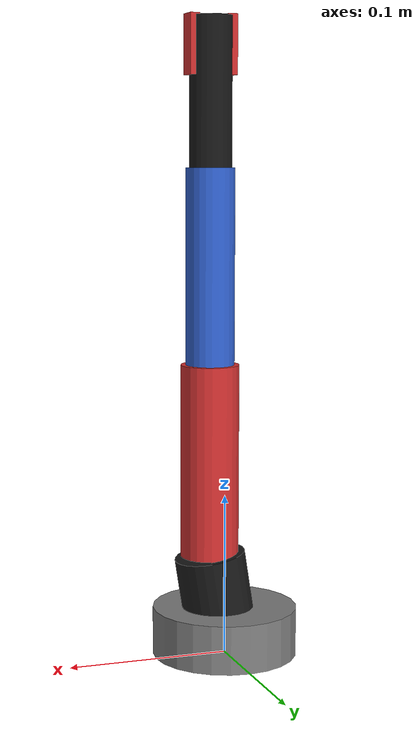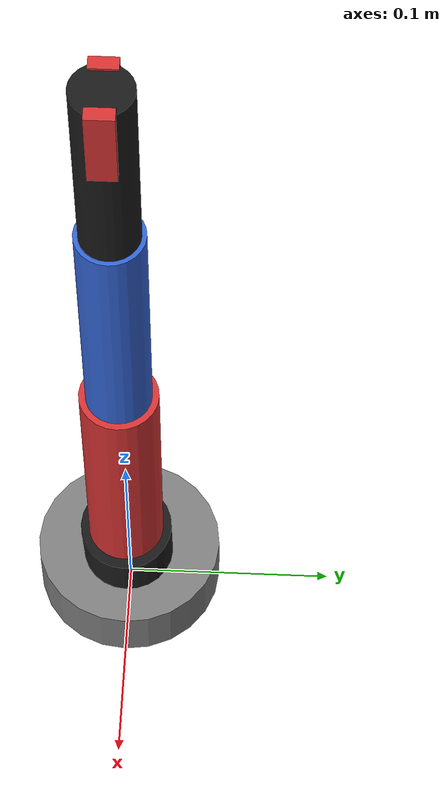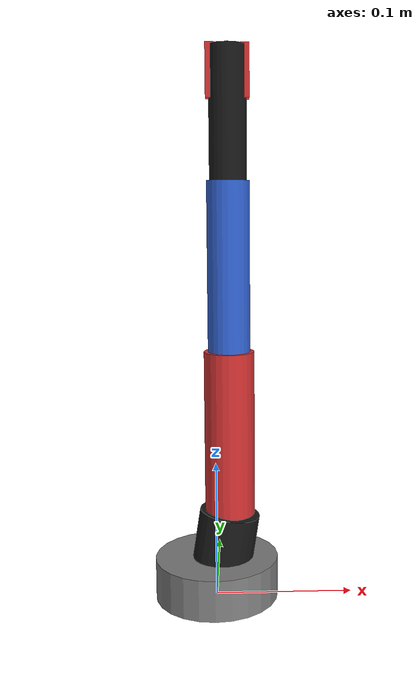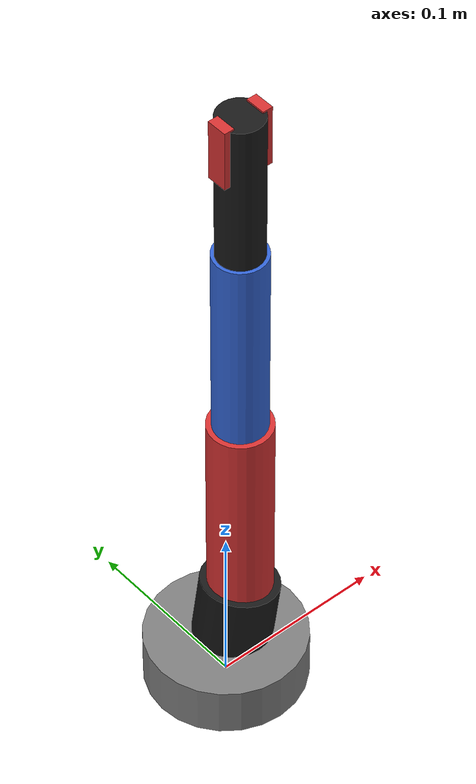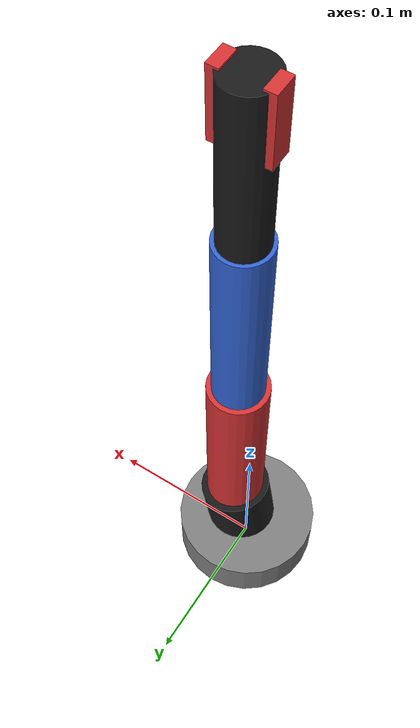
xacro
<?xml version="1.0"?>
<robot name="robotfun" xmlns:xacro="http://www.ros.org/wiki/xacro">

  <xacro:include filename="$(find robotfun_description)/urdf/common/materials.xacro"/>
  <xacro:include filename="$(find robotfun_description)/urdf/common/arm.macro.xacro"/>
  <xacro:include filename="$(find robotfun_description)/urdf/common/gripper.macro.xacro"/>

  <xacro:robotfun_arm/>

  <!-- gripper (canal 5 del firmware) en la mano, cerca de la punta -->
  <xacro:gripper_primitive parent="link_4">
    <origin xyz="0 0 0.055" rpy="0 0 0"/>
  </xacro:gripper_primitive>

</robot>

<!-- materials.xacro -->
<!-- Materiales compartidos por los modelos primitivo y de meshes. -->
<robot xmlns:xacro="http://www.ros.org/wiki/xacro">
  <material name="black"><color rgba="0.10 0.10 0.10 1.0"/></material>
  <material name="grey"><color rgba="0.50 0.50 0.50 1.0"/></material>
  <material name="white_grey"><color rgba="0.80 0.80 0.80 1.0"/></material>
  <material name="red"><color rgba="0.85 0.20 0.20 1.0"/></material>
  <material name="green"><color rgba="0.20 0.70 0.30 1.0"/></material>
  <material name="blue"><color rgba="0.20 0.40 0.85 1.0"/></material>
</robot>

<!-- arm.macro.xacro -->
<robot xmlns:xacro="http://www.ros.org/wiki/xacro">

  <xacro:property name="lo" value="-1.5708"/>   <!-- −90° (HOME=0 ⇒ servo a 90°) -->
  <xacro:property name="hi" value="1.5708"/>

  <xacro:macro name="robotfun_arm">

    <link name="world"/>
    <joint name="base_joint" type="fixed">
      <origin xyz="0 0 0" rpy="0 0 0"/><parent link="world"/><child link="base_link"/>
    </joint>

    <!-- base_link (soporte fijo) -->
    <link name="base_link">
      <inertial><mass value="1.0"/>
        <inertia ixx="0.01" ixy="0" ixz="0" iyy="0.01" iyz="0" izz="0.01"/></inertial>
      <visual>
        <origin xyz="0 0 0.015" rpy="0 0 0"/>
        <geometry><cylinder radius="0.045" length="0.03"/></geometry>
        <material name="grey"/>
      </visual>
    </link>

    <!-- joint_1: yaw de base -->
    <joint name="joint_1" type="revolute">
      <origin xyz="0 0 0" rpy="0 0 0"/><parent link="base_link"/><child link="link_1"/>
      <axis xyz="0 0 1"/><limit lower="${lo}" upper="${hi}" effort="10.0" velocity="1.5"/>
    </joint>

    <!-- link_1: columna de yaw hasta el hombro (L0 radial, L1 alto) -->
    <link name="link_1">
      <inertial><origin xyz="0.005 0 0.032"/><mass value="0.5"/>
        <inertia ixx="1e-3" ixy="0" ixz="0" iyy="1e-3" iyz="0" izz="1e-3"/></inertial>
      <visual>
        <origin xyz="0.005 0 0.032" rpy="0 0.156 0"/>
        <geometry><cylinder radius="0.022" length="0.064"/></geometry>
        <material name="black"/>
      </visual>
    </link>

    <!-- joint_2: pitch de hombro — offset radial L0=0.010, alto L1=0.063 -->
    <joint name="joint_2" type="revolute">
      <origin xyz="0.010 0 0.063" rpy="0 0 0"/><parent link="link_1"/><child link="link_2"/>
      <axis xyz="0 -1 0"/><limit lower="${lo}" upper="${hi}" effort="10.0" velocity="1.5"/>
    </joint>

    <!-- link_2: brazo L2=0.120 -->
    <link name="link_2">
      <inertial><origin xyz="0 0 0.06"/><mass value="0.4"/>
        <inertia ixx="1e-3" ixy="0" ixz="0" iyy="1e-3" iyz="0" izz="1e-3"/></inertial>
      <visual>
        <origin xyz="0 0 0.060" rpy="0 0 0"/>
        <geometry><cylinder radius="0.018" length="0.120"/></geometry>
        <material name="red"/>
      </visual>
    </link>

    <!-- joint_3: pitch de codo -->
    <joint name="joint_3" type="revolute">
      <origin xyz="0 0 0.120" rpy="0 0 0"/><parent link="link_2"/><child link="link_3"/>
      <axis xyz="0 -1 0"/><limit lower="${lo}" upper="${hi}" effort="10.0" velocity="1.5"/>
    </joint>

    <!-- link_3: antebrazo A3=L3+L4=0.120 (codo → muñeca) -->
    <link name="link_3">
      <inertial><origin xyz="0 0 0.06"/><mass value="0.3"/>
        <inertia ixx="8e-4" ixy="0" ixz="0" iyy="8e-4" iyz="0" izz="8e-4"/></inertial>
      <visual>
        <origin xyz="0 0 0.060" rpy="0 0 0"/>
        <geometry><cylinder radius="0.015" length="0.120"/></geometry>
        <material name="blue"/>
      </visual>
    </link>

    <!-- joint_4: pitch de muñeca/pinza -->
    <joint name="joint_4" type="revolute">
      <origin xyz="0 0 0.120" rpy="0 0 0"/><parent link="link_3"/><child link="link_4"/>
      <axis xyz="0 -1 0"/><limit lower="${lo}" upper="${hi}" effort="10.0" velocity="1.5"/>
    </joint>

    <!-- link_4: mano HAND=L5=0.090 (muñeca → punta del gripper) -->
    <link name="link_4">
      <inertial><origin xyz="0 0 0.045"/><mass value="0.2"/>
        <inertia ixx="5e-4" ixy="0" ixz="0" iyy="5e-4" iyz="0" izz="5e-4"/></inertial>
      <visual>
        <origin xyz="0 0 0.045" rpy="0 0 0"/>
        <geometry><cylinder radius="0.013" length="0.090"/></geometry>
        <material name="black"/>
      </visual>
    </link>

    <!-- tool0 = TCP (punta del gripper). Solo frame, sin geometría. -->
    <joint name="tool_fixed" type="fixed">
      <origin xyz="0 0 0.090" rpy="0 0 0"/><parent link="link_4"/><child link="tool0"/>
    </joint>
    <link name="tool0"/>

  </xacro:macro>
</robot>

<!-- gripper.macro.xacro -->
<robot xmlns:xacro="http://www.ros.org/wiki/xacro">

  <xacro:macro name="gripper_primitive" params="parent *origin">
    <joint name="gripper" type="revolute">
      <xacro:insert_block name="origin"/>
      <parent link="${parent}"/><child link="gripper_finger_left"/>
      <axis xyz="0 1 0"/>
      <limit effort="5.0" lower="0.0" upper="1.2" velocity="2.0"/>
    </joint>
    <link name="gripper_finger_left">
      <inertial><mass value="0.01"/>
        <inertia ixx="1e-6" ixy="0" ixz="0" iyy="1e-6" iyz="0" izz="1e-6"/></inertial>
      <visual>
        <origin xyz="0.012 0 0.018" rpy="0 0 0"/>
        <geometry><box size="0.006 0.012 0.036"/></geometry>
        <material name="red"/>
      </visual>
    </link>
    <joint name="gripper_right" type="revolute">
      <xacro:insert_block name="origin"/>
      <parent link="${parent}"/><child link="gripper_finger_right"/>
      <axis xyz="0 1 0"/>
      <limit effort="5.0" lower="-1.2" upper="0.0" velocity="2.0"/>
      <mimic joint="gripper" multiplier="-1.0"/>
    </joint>
    <link name="gripper_finger_right">
      <inertial><mass value="0.01"/>
        <inertia ixx="1e-6" ixy="0" ixz="0" iyy="1e-6" iyz="0" izz="1e-6"/></inertial>
      <visual>
        <origin xyz="-0.012 0 0.018" rpy="0 0 0"/>
        <geometry><box size="0.006 0.012 0.036"/></geometry>
        <material name="red"/>
      </visual>
    </link>
  </xacro:macro>

</robot>
